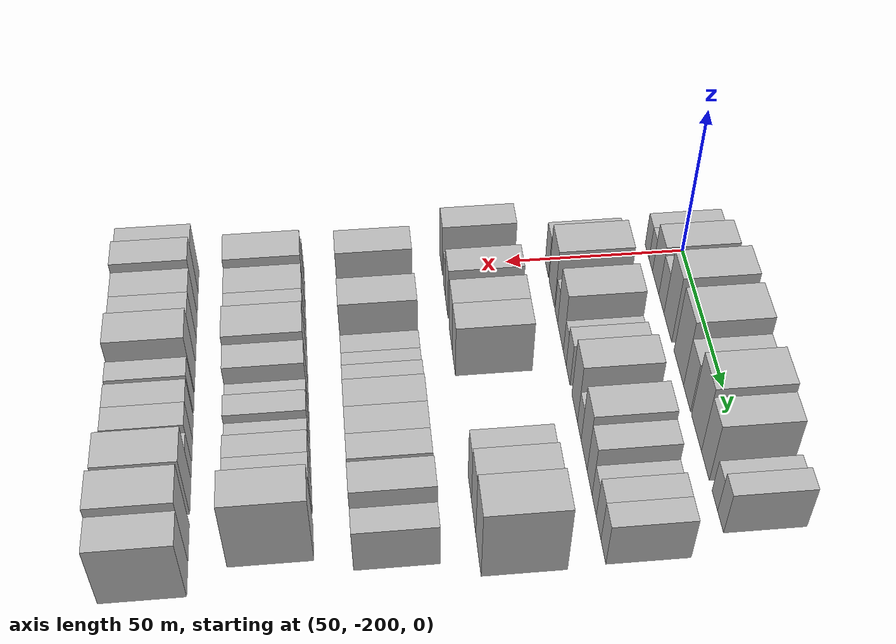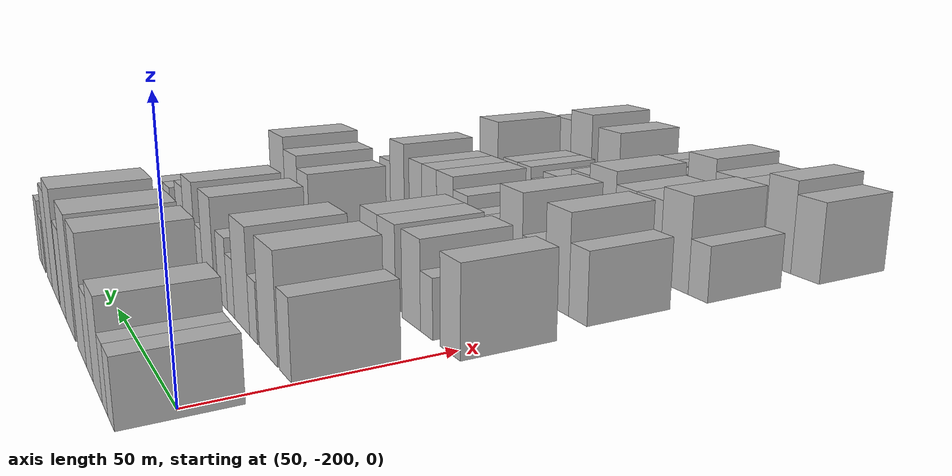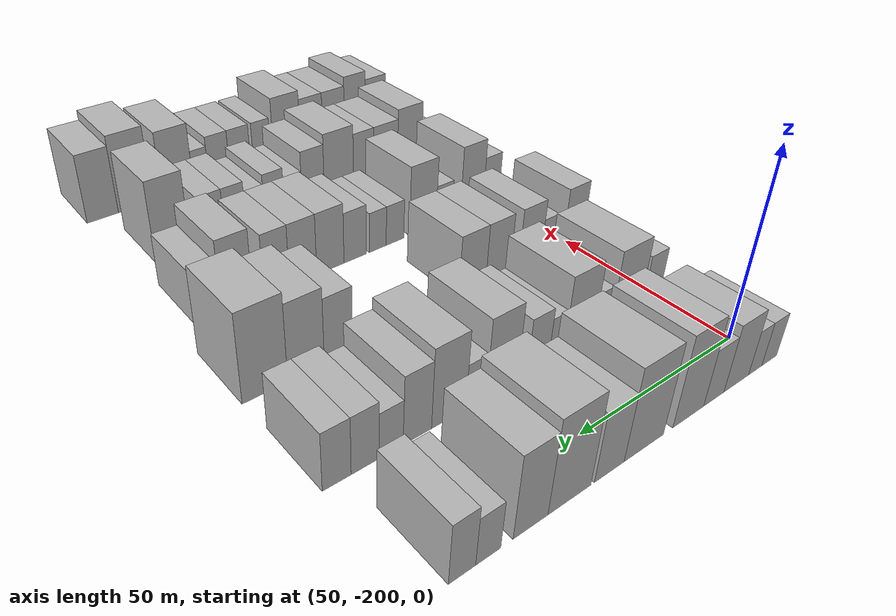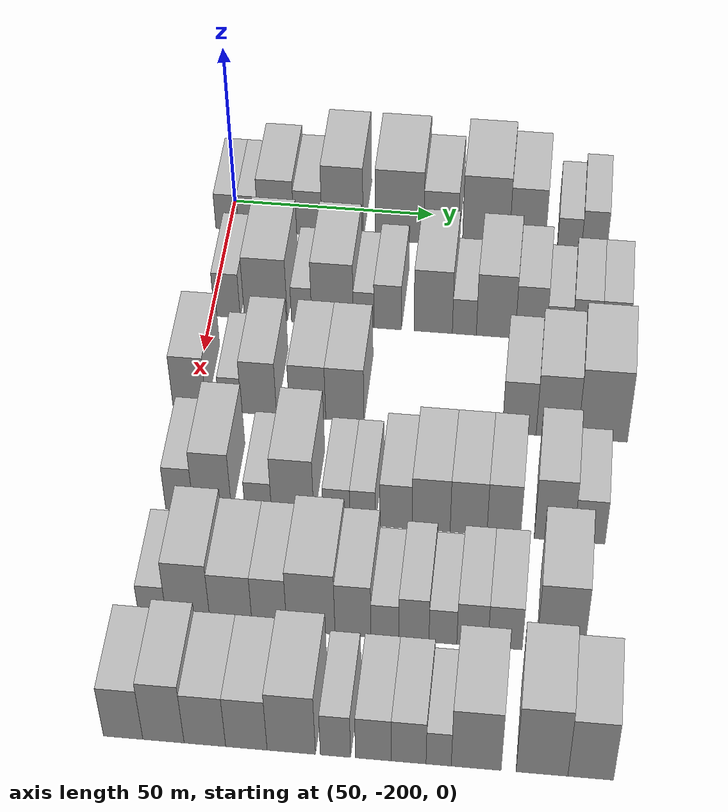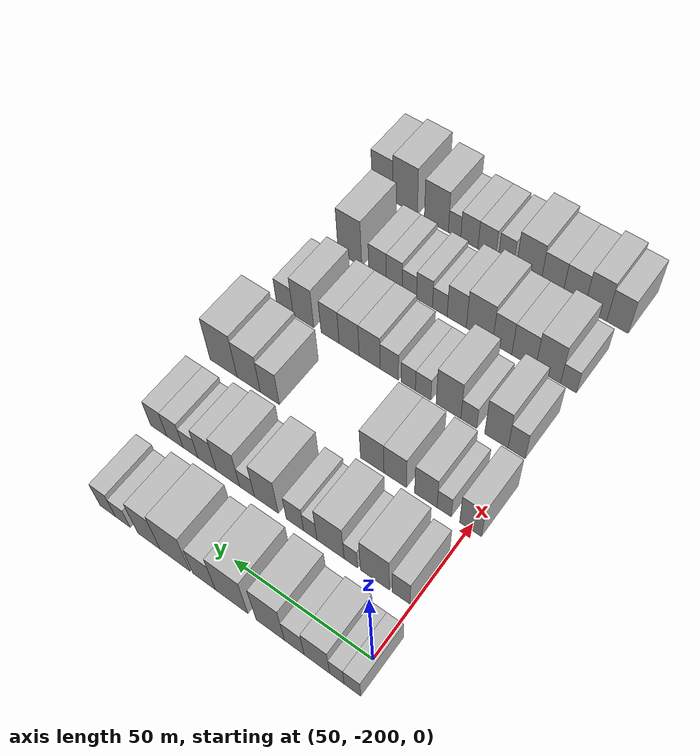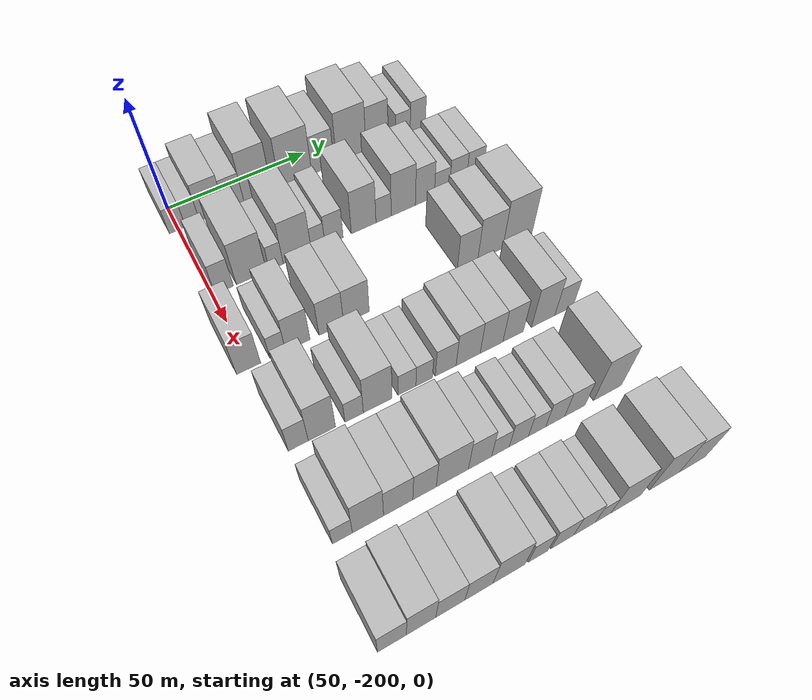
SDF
<sdf version="1.6">
 <world name="default">
  <model name="building_39">
   <static>1</static>
   <pose>50.0000 -200.4385 0 0.000000 0.000000 0.000000</pose>
   <link name="link">
    <pose>0 0 6.00 0 0 0</pose>
    <collision name="collision"><geometry><box><size>20.0000 5.6861 12.0000</size></box></geometry></collision>
    <visual name="visual">
     <cast_shadows>0</cast_shadows>
     <geometry><box><size>20.0000 5.6861 12.0000</size></box></geometry>
     <material>
      <script>
       <uri>model://HANNAS_wall/materials/scripts</uri>
       <uri>model://HANNAS_wall/materials/textures</uri>
       <name>vrc/HANNAS_wall</name>
      </script>
     </material>
    </visual>
   </link>
  </model>
  <model name="building_40">
   <static>1</static>
   <pose>50.0000 -195.1196 0 0.000000 0.000000 0.000000</pose>
   <link name="link">
    <pose>0 0 6.00 0 0 0</pose>
    <collision name="collision"><geometry><box><size>20.0000 4.9517 12.0000</size></box></geometry></collision>
    <visual name="visual">
     <cast_shadows>0</cast_shadows>
     <geometry><box><size>20.0000 4.9517 12.0000</size></box></geometry>
     <material>
      <script>
       <uri>model://HANNAS_wall/materials/scripts</uri>
       <uri>model://HANNAS_wall/materials/textures</uri>
       <name>vrc/HANNAS_wall</name>
      </script>
     </material>
    </visual>
   </link>
  </model>
  <model name="building_41">
   <static>1</static>
   <pose>50.0000 -188.1827 0 0.000000 0.000000 0.000000</pose>
   <link name="link">
    <pose>0 0 9.00 0 0 0</pose>
    <collision name="collision"><geometry><box><size>20.0000 8.9222 18.0000</size></box></geometry></collision>
    <visual name="visual">
     <cast_shadows>0</cast_shadows>
     <geometry><box><size>20.0000 8.9222 18.0000</size></box></geometry>
     <material>
      <script>
       <uri>model://HANNAS_wall/materials/scripts</uri>
       <uri>model://HANNAS_wall/materials/textures</uri>
       <name>vrc/HANNAS_wall</name>
      </script>
     </material>
    </visual>
   </link>
  </model>
  <model name="building_42">
   <static>1</static>
   <pose>50.0000 -180.2216 0 0.000000 0.000000 0.000000</pose>
   <link name="link">
    <pose>0 0 7.50 0 0 0</pose>
    <collision name="collision"><geometry><box><size>20.0000 7.0001 15.0000</size></box></geometry></collision>
    <visual name="visual">
     <cast_shadows>0</cast_shadows>
     <geometry><box><size>20.0000 7.0001 15.0000</size></box></geometry>
     <material>
      <script>
       <uri>model://HANNAS_wall/materials/scripts</uri>
       <uri>model://HANNAS_wall/materials/textures</uri>
       <name>vrc/HANNAS_wall</name>
      </script>
     </material>
    </visual>
   </link>
  </model>
  <model name="building_43">
   <static>1</static>
   <pose>50.0000 -171.6145 0 0.000000 0.000000 0.000000</pose>
   <link name="link">
    <pose>0 0 12.00 0 0 0</pose>
    <collision name="collision"><geometry><box><size>20.0000 10.2140 24.0000</size></box></geometry></collision>
    <visual name="visual">
     <cast_shadows>0</cast_shadows>
     <geometry><box><size>20.0000 10.2140 24.0000</size></box></geometry>
     <material>
      <script>
       <uri>model://HANNAS_wall/materials/scripts</uri>
       <uri>model://HANNAS_wall/materials/textures</uri>
       <name>vrc/HANNAS_wall</name>
      </script>
     </material>
    </visual>
   </link>
  </model>
  <model name="building_44">
   <static>1</static>
   <pose>50.0000 -157.5136 0 0.000000 0.000000 0.000000</pose>
   <link name="link">
    <pose>0 0 12.00 0 0 0</pose>
    <collision name="collision"><geometry><box><size>20.0000 11.9879 24.0000</size></box></geometry></collision>
    <visual name="visual">
     <cast_shadows>0</cast_shadows>
     <geometry><box><size>20.0000 11.9879 24.0000</size></box></geometry>
     <material>
      <script>
       <uri>model://HANNAS_wall/materials/scripts</uri>
       <uri>model://HANNAS_wall/materials/textures</uri>
       <name>vrc/HANNAS_wall</name>
      </script>
     </material>
    </visual>
   </link>
  </model>
  <model name="building_45">
   <static>1</static>
   <pose>50.0000 -147.2561 0 0.000000 0.000000 0.000000</pose>
   <link name="link">
    <pose>0 0 9.00 0 0 0</pose>
    <collision name="collision"><geometry><box><size>20.0000 8.5272 18.0000</size></box></geometry></collision>
    <visual name="visual">
     <cast_shadows>0</cast_shadows>
     <geometry><box><size>20.0000 8.5272 18.0000</size></box></geometry>
     <material>
      <script>
       <uri>model://HANNAS_wall/materials/scripts</uri>
       <uri>model://HANNAS_wall/materials/textures</uri>
       <name>vrc/HANNAS_wall</name>
      </script>
     </material>
    </visual>
   </link>
  </model>
  <model name="building_46">
   <static>1</static>
   <pose>50.0000 -136.2313 0 0.000000 0.000000 0.000000</pose>
   <link name="link">
    <pose>0 0 12.00 0 0 0</pose>
    <collision name="collision"><geometry><box><size>20.0000 11.5224 24.0000</size></box></geometry></collision>
    <visual name="visual">
     <cast_shadows>0</cast_shadows>
     <geometry><box><size>20.0000 11.5224 24.0000</size></box></geometry>
     <material>
      <script>
       <uri>model://HANNAS_wall/materials/scripts</uri>
       <uri>model://HANNAS_wall/materials/textures</uri>
       <name>vrc/HANNAS_wall</name>
      </script>
     </material>
    </visual>
   </link>
  </model>
  <model name="building_47">
   <static>1</static>
   <pose>50.0000 -126.0759 0 0.000000 0.000000 0.000000</pose>
   <link name="link">
    <pose>0 0 10.50 0 0 0</pose>
    <collision name="collision"><geometry><box><size>20.0000 8.7885 21.0000</size></box></geometry></collision>
    <visual name="visual">
     <cast_shadows>0</cast_shadows>
     <geometry><box><size>20.0000 8.7885 21.0000</size></box></geometry>
     <material>
      <script>
       <uri>model://HANNAS_wall/materials/scripts</uri>
       <uri>model://HANNAS_wall/materials/textures</uri>
       <name>vrc/HANNAS_wall</name>
      </script>
     </material>
    </visual>
   </link>
  </model>
  <model name="building_48">
   <static>1</static>
   <pose>50.0000 -115.7312 0 0.000000 0.000000 0.000000</pose>
   <link name="link">
    <pose>0 0 6.00 0 0 0</pose>
    <collision name="collision"><geometry><box><size>20.0000 5.9009 12.0000</size></box></geometry></collision>
    <visual name="visual">
     <cast_shadows>0</cast_shadows>
     <geometry><box><size>20.0000 5.9009 12.0000</size></box></geometry>
     <material>
      <script>
       <uri>model://HANNAS_wall/materials/scripts</uri>
       <uri>model://HANNAS_wall/materials/textures</uri>
       <name>vrc/HANNAS_wall</name>
      </script>
     </material>
    </visual>
   </link>
  </model>
  <model name="building_49">
   <static>1</static>
   <pose>50.0000 -109.6827 0 0.000000 0.000000 0.000000</pose>
   <link name="link">
    <pose>0 0 7.50 0 0 0</pose>
    <collision name="collision"><geometry><box><size>20.0000 6.1962 15.0000</size></box></geometry></collision>
    <visual name="visual">
     <cast_shadows>0</cast_shadows>
     <geometry><box><size>20.0000 6.1962 15.0000</size></box></geometry>
     <material>
      <script>
       <uri>model://HANNAS_wall/materials/scripts</uri>
       <uri>model://HANNAS_wall/materials/textures</uri>
       <name>vrc/HANNAS_wall</name>
      </script>
     </material>
    </visual>
   </link>
  </model>
  <model name="building_156">
   <static>1</static>
   <pose>79.0000 -196.0787 0 0.000000 0.000000 0.000000</pose>
   <link name="link">
    <pose>0 0 7.50 0 0 0</pose>
    <collision name="collision"><geometry><box><size>20.0000 6.2266 15.0000</size></box></geometry></collision>
    <visual name="visual">
     <cast_shadows>0</cast_shadows>
     <geometry><box><size>20.0000 6.2266 15.0000</size></box></geometry>
     <material>
      <script>
       <uri>model://HANNAS_wall/materials/scripts</uri>
       <uri>model://HANNAS_wall/materials/textures</uri>
       <name>vrc/HANNAS_wall</name>
      </script>
     </material>
    </visual>
   </link>
  </model>
  <model name="building_157">
   <static>1</static>
   <pose>79.0000 -186.7934 0 0.000000 0.000000 0.000000</pose>
   <link name="link">
    <pose>0 0 10.50 0 0 0</pose>
    <collision name="collision"><geometry><box><size>20.0000 10.3439 21.0000</size></box></geometry></collision>
    <visual name="visual">
     <cast_shadows>0</cast_shadows>
     <geometry><box><size>20.0000 10.3439 21.0000</size></box></geometry>
     <material>
      <script>
       <uri>model://HANNAS_wall/materials/scripts</uri>
       <uri>model://HANNAS_wall/materials/textures</uri>
       <name>vrc/HANNAS_wall</name>
      </script>
     </material>
    </visual>
   </link>
  </model>
  <model name="building_158">
   <static>1</static>
   <pose>79.0000 -178.1878 0 0.000000 0.000000 0.000000</pose>
   <link name="link">
    <pose>0 0 6.00 0 0 0</pose>
    <collision name="collision"><geometry><box><size>20.0000 4.8673 12.0000</size></box></geometry></collision>
    <visual name="visual">
     <cast_shadows>0</cast_shadows>
     <geometry><box><size>20.0000 4.8673 12.0000</size></box></geometry>
     <material>
      <script>
       <uri>model://HANNAS_wall/materials/scripts</uri>
       <uri>model://HANNAS_wall/materials/textures</uri>
       <name>vrc/HANNAS_wall</name>
      </script>
     </material>
    </visual>
   </link>
  </model>
  <model name="building_159">
   <static>1</static>
   <pose>79.0000 -170.7683 0 0.000000 0.000000 0.000000</pose>
   <link name="link">
    <pose>0 0 10.50 0 0 0</pose>
    <collision name="collision"><geometry><box><size>20.0000 9.9718 21.0000</size></box></geometry></collision>
    <visual name="visual">
     <cast_shadows>0</cast_shadows>
     <geometry><box><size>20.0000 9.9718 21.0000</size></box></geometry>
     <material>
      <script>
       <uri>model://HANNAS_wall/materials/scripts</uri>
       <uri>model://HANNAS_wall/materials/textures</uri>
       <name>vrc/HANNAS_wall</name>
      </script>
     </material>
    </visual>
   </link>
  </model>
  <model name="building_160">
   <static>1</static>
   <pose>79.0000 -163.3322 0 0.000000 0.000000 0.000000</pose>
   <link name="link">
    <pose>0 0 6.00 0 0 0</pose>
    <collision name="collision"><geometry><box><size>20.0000 4.9003 12.0000</size></box></geometry></collision>
    <visual name="visual">
     <cast_shadows>0</cast_shadows>
     <geometry><box><size>20.0000 4.9003 12.0000</size></box></geometry>
     <material>
      <script>
       <uri>model://HANNAS_wall/materials/scripts</uri>
       <uri>model://HANNAS_wall/materials/textures</uri>
       <name>vrc/HANNAS_wall</name>
      </script>
     </material>
    </visual>
   </link>
  </model>
  <model name="building_161">
   <static>1</static>
   <pose>79.0000 -157.5991 0 0.000000 0.000000 0.000000</pose>
   <link name="link">
    <pose>0 0 7.50 0 0 0</pose>
    <collision name="collision"><geometry><box><size>20.0000 6.5660 15.0000</size></box></geometry></collision>
    <visual name="visual">
     <cast_shadows>0</cast_shadows>
     <geometry><box><size>20.0000 6.5660 15.0000</size></box></geometry>
     <material>
      <script>
       <uri>model://HANNAS_wall/materials/scripts</uri>
       <uri>model://HANNAS_wall/materials/textures</uri>
       <name>vrc/HANNAS_wall</name>
      </script>
     </material>
    </visual>
   </link>
  </model>
  <model name="building_162">
   <static>1</static>
   <pose>79.0000 -146.7501 0 0.000000 0.000000 0.000000</pose>
   <link name="link">
    <pose>0 0 10.50 0 0 0</pose>
    <collision name="collision"><geometry><box><size>20.0000 9.1320 21.0000</size></box></geometry></collision>
    <visual name="visual">
     <cast_shadows>0</cast_shadows>
     <geometry><box><size>20.0000 9.1320 21.0000</size></box></geometry>
     <material>
      <script>
       <uri>model://HANNAS_wall/materials/scripts</uri>
       <uri>model://HANNAS_wall/materials/textures</uri>
       <name>vrc/HANNAS_wall</name>
      </script>
     </material>
    </visual>
   </link>
  </model>
  <model name="building_163">
   <static>1</static>
   <pose>79.0000 -139.3317 0 0.000000 0.000000 0.000000</pose>
   <link name="link">
    <pose>0 0 6.00 0 0 0</pose>
    <collision name="collision"><geometry><box><size>20.0000 5.7049 12.0000</size></box></geometry></collision>
    <visual name="visual">
     <cast_shadows>0</cast_shadows>
     <geometry><box><size>20.0000 5.7049 12.0000</size></box></geometry>
     <material>
      <script>
       <uri>model://HANNAS_wall/materials/scripts</uri>
       <uri>model://HANNAS_wall/materials/textures</uri>
       <name>vrc/HANNAS_wall</name>
      </script>
     </material>
    </visual>
   </link>
  </model>
  <model name="building_164">
   <static>1</static>
   <pose>79.0000 -131.8574 0 0.000000 0.000000 0.000000</pose>
   <link name="link">
    <pose>0 0 10.50 0 0 0</pose>
    <collision name="collision"><geometry><box><size>20.0000 9.2436 21.0000</size></box></geometry></collision>
    <visual name="visual">
     <cast_shadows>0</cast_shadows>
     <geometry><box><size>20.0000 9.2436 21.0000</size></box></geometry>
     <material>
      <script>
       <uri>model://HANNAS_wall/materials/scripts</uri>
       <uri>model://HANNAS_wall/materials/textures</uri>
       <name>vrc/HANNAS_wall</name>
      </script>
     </material>
    </visual>
   </link>
  </model>
  <model name="building_165">
   <static>1</static>
   <pose>79.0000 -123.5804 0 0.000000 0.000000 0.000000</pose>
   <link name="link">
    <pose>0 0 9.00 0 0 0</pose>
    <collision name="collision"><geometry><box><size>20.0000 7.3105 18.0000</size></box></geometry></collision>
    <visual name="visual">
     <cast_shadows>0</cast_shadows>
     <geometry><box><size>20.0000 7.3105 18.0000</size></box></geometry>
     <material>
      <script>
       <uri>model://HANNAS_wall/materials/scripts</uri>
       <uri>model://HANNAS_wall/materials/textures</uri>
       <name>vrc/HANNAS_wall</name>
      </script>
     </material>
    </visual>
   </link>
  </model>
  <model name="building_166">
   <static>1</static>
   <pose>79.0000 -116.9290 0 0.000000 0.000000 0.000000</pose>
   <link name="link">
    <pose>0 0 6.00 0 0 0</pose>
    <collision name="collision"><geometry><box><size>20.0000 5.9922 12.0000</size></box></geometry></collision>
    <visual name="visual">
     <cast_shadows>0</cast_shadows>
     <geometry><box><size>20.0000 5.9922 12.0000</size></box></geometry>
     <material>
      <script>
       <uri>model://HANNAS_wall/materials/scripts</uri>
       <uri>model://HANNAS_wall/materials/textures</uri>
       <name>vrc/HANNAS_wall</name>
      </script>
     </material>
    </visual>
   </link>
  </model>
  <model name="building_167">
   <static>1</static>
   <pose>79.0000 -110.6026 0 0.000000 0.000000 0.000000</pose>
   <link name="link">
    <pose>0 0 7.50 0 0 0</pose>
    <collision name="collision"><geometry><box><size>20.0000 6.6606 15.0000</size></box></geometry></collision>
    <visual name="visual">
     <cast_shadows>0</cast_shadows>
     <geometry><box><size>20.0000 6.6606 15.0000</size></box></geometry>
     <material>
      <script>
       <uri>model://HANNAS_wall/materials/scripts</uri>
       <uri>model://HANNAS_wall/materials/textures</uri>
       <name>vrc/HANNAS_wall</name>
      </script>
     </material>
    </visual>
   </link>
  </model>
  <model name="building_168">
   <static>1</static>
   <pose>79.0000 -103.9486 0 0.000000 0.000000 0.000000</pose>
   <link name="link">
    <pose>0 0 7.50 0 0 0</pose>
    <collision name="collision"><geometry><box><size>20.0000 6.6475 15.0000</size></box></geometry></collision>
    <visual name="visual">
     <cast_shadows>0</cast_shadows>
     <geometry><box><size>20.0000 6.6475 15.0000</size></box></geometry>
     <material>
      <script>
       <uri>model://HANNAS_wall/materials/scripts</uri>
       <uri>model://HANNAS_wall/materials/textures</uri>
       <name>vrc/HANNAS_wall</name>
      </script>
     </material>
    </visual>
   </link>
  </model>
  <model name="building_270">
   <static>1</static>
   <pose>108.0000 -200.4807 0 0.000000 0.000000 0.000000</pose>
   <link name="link">
    <pose>0 0 9.00 0 0 0</pose>
    <collision name="collision"><geometry><box><size>20.0000 7.7649 18.0000</size></box></geometry></collision>
    <visual name="visual">
     <cast_shadows>0</cast_shadows>
     <geometry><box><size>20.0000 7.7649 18.0000</size></box></geometry>
     <material>
      <script>
       <uri>model://HANNAS_wall/materials/scripts</uri>
       <uri>model://HANNAS_wall/materials/textures</uri>
       <name>vrc/HANNAS_wall</name>
      </script>
     </material>
    </visual>
   </link>
  </model>
  <model name="building_271">
   <static>1</static>
   <pose>108.0000 -191.0362 0 0.000000 0.000000 0.000000</pose>
   <link name="link">
    <pose>0 0 6.00 0 0 0</pose>
    <collision name="collision"><geometry><box><size>20.0000 5.1241 12.0000</size></box></geometry></collision>
    <visual name="visual">
     <cast_shadows>0</cast_shadows>
     <geometry><box><size>20.0000 5.1241 12.0000</size></box></geometry>
     <material>
      <script>
       <uri>model://HANNAS_wall/materials/scripts</uri>
       <uri>model://HANNAS_wall/materials/textures</uri>
       <name>vrc/HANNAS_wall</name>
      </script>
     </material>
    </visual>
   </link>
  </model>
  <model name="building_272">
   <static>1</static>
   <pose>108.0000 -184.4050 0 0.000000 0.000000 0.000000</pose>
   <link name="link">
    <pose>0 0 9.00 0 0 0</pose>
    <collision name="collision"><geometry><box><size>20.0000 8.1384 18.0000</size></box></geometry></collision>
    <visual name="visual">
     <cast_shadows>0</cast_shadows>
     <geometry><box><size>20.0000 8.1384 18.0000</size></box></geometry>
     <material>
      <script>
       <uri>model://HANNAS_wall/materials/scripts</uri>
       <uri>model://HANNAS_wall/materials/textures</uri>
       <name>vrc/HANNAS_wall</name>
      </script>
     </material>
    </visual>
   </link>
  </model>
  <model name="building_273">
   <static>1</static>
   <pose>108.0000 -173.1613 0 0.000000 0.000000 0.000000</pose>
   <link name="link">
    <pose>0 0 9.00 0 0 0</pose>
    <collision name="collision"><geometry><box><size>20.0000 8.3489 18.0000</size></box></geometry></collision>
    <visual name="visual">
     <cast_shadows>0</cast_shadows>
     <geometry><box><size>20.0000 8.3489 18.0000</size></box></geometry>
     <material>
      <script>
       <uri>model://HANNAS_wall/materials/scripts</uri>
       <uri>model://HANNAS_wall/materials/textures</uri>
       <name>vrc/HANNAS_wall</name>
      </script>
     </material>
    </visual>
   </link>
  </model>
  <model name="building_274">
   <static>1</static>
   <pose>108.0000 -164.5776 0 0.000000 0.000000 0.000000</pose>
   <link name="link">
    <pose>0 0 9.00 0 0 0</pose>
    <collision name="collision"><geometry><box><size>20.0000 8.8185 18.0000</size></box></geometry></collision>
    <visual name="visual">
     <cast_shadows>0</cast_shadows>
     <geometry><box><size>20.0000 8.8185 18.0000</size></box></geometry>
     <material>
      <script>
       <uri>model://HANNAS_wall/materials/scripts</uri>
       <uri>model://HANNAS_wall/materials/textures</uri>
       <name>vrc/HANNAS_wall</name>
      </script>
     </material>
    </visual>
   </link>
  </model>
  <model name="building_275">
   <static>1</static>
   <pose>108.0000 -124.6228 0 0.000000 0.000000 0.000000</pose>
   <link name="link">
    <pose>0 0 9.00 0 0 0</pose>
    <collision name="collision"><geometry><box><size>20.0000 7.6971 18.0000</size></box></geometry></collision>
    <visual name="visual">
     <cast_shadows>0</cast_shadows>
     <geometry><box><size>20.0000 7.6971 18.0000</size></box></geometry>
     <material>
      <script>
       <uri>model://HANNAS_wall/materials/scripts</uri>
       <uri>model://HANNAS_wall/materials/textures</uri>
       <name>vrc/HANNAS_wall</name>
      </script>
     </material>
    </visual>
   </link>
  </model>
  <model name="building_276">
   <static>1</static>
   <pose>108.0000 -116.0191 0 0.000000 0.000000 0.000000</pose>
   <link name="link">
    <pose>0 0 10.50 0 0 0</pose>
    <collision name="collision"><geometry><box><size>20.0000 9.5101 21.0000</size></box></geometry></collision>
    <visual name="visual">
     <cast_shadows>0</cast_shadows>
     <geometry><box><size>20.0000 9.5101 21.0000</size></box></geometry>
     <material>
      <script>
       <uri>model://HANNAS_wall/materials/scripts</uri>
       <uri>model://HANNAS_wall/materials/textures</uri>
       <name>vrc/HANNAS_wall</name>
      </script>
     </material>
    </visual>
   </link>
  </model>
  <model name="building_277">
   <static>1</static>
   <pose>108.0000 -105.6453 0 0.000000 0.000000 0.000000</pose>
   <link name="link">
    <pose>0 0 12.00 0 0 0</pose>
    <collision name="collision"><geometry><box><size>20.0000 11.2376 24.0000</size></box></geometry></collision>
    <visual name="visual">
     <cast_shadows>0</cast_shadows>
     <geometry><box><size>20.0000 11.2376 24.0000</size></box></geometry>
     <material>
      <script>
       <uri>model://HANNAS_wall/materials/scripts</uri>
       <uri>model://HANNAS_wall/materials/textures</uri>
       <name>vrc/HANNAS_wall</name>
      </script>
     </material>
    </visual>
   </link>
  </model>
  <model name="building_378">
   <static>1</static>
   <pose>137.0000 -198.0681 0 0.000000 0.000000 0.000000</pose>
   <link name="link">
    <pose>0 0 7.50 0 0 0</pose>
    <collision name="collision"><geometry><box><size>20.0000 6.2134 15.0000</size></box></geometry></collision>
    <visual name="visual">
     <cast_shadows>0</cast_shadows>
     <geometry><box><size>20.0000 6.2134 15.0000</size></box></geometry>
     <material>
      <script>
       <uri>model://HANNAS_wall/materials/scripts</uri>
       <uri>model://HANNAS_wall/materials/textures</uri>
       <name>vrc/HANNAS_wall</name>
      </script>
     </material>
    </visual>
   </link>
  </model>
  <model name="building_379">
   <static>1</static>
   <pose>137.0000 -190.6801 0 0.000000 0.000000 0.000000</pose>
   <link name="link">
    <pose>0 0 10.50 0 0 0</pose>
    <collision name="collision"><geometry><box><size>20.0000 8.5626 21.0000</size></box></geometry></collision>
    <visual name="visual">
     <cast_shadows>0</cast_shadows>
     <geometry><box><size>20.0000 8.5626 21.0000</size></box></geometry>
     <material>
      <script>
       <uri>model://HANNAS_wall/materials/scripts</uri>
       <uri>model://HANNAS_wall/materials/textures</uri>
       <name>vrc/HANNAS_wall</name>
      </script>
     </material>
    </visual>
   </link>
  </model>
  <model name="building_380">
   <static>1</static>
   <pose>137.0000 -180.4495 0 0.000000 0.000000 0.000000</pose>
   <link name="link">
    <pose>0 0 6.00 0 0 0</pose>
    <collision name="collision"><geometry><box><size>20.0000 5.8986 12.0000</size></box></geometry></collision>
    <visual name="visual">
     <cast_shadows>0</cast_shadows>
     <geometry><box><size>20.0000 5.8986 12.0000</size></box></geometry>
     <material>
      <script>
       <uri>model://HANNAS_wall/materials/scripts</uri>
       <uri>model://HANNAS_wall/materials/textures</uri>
       <name>vrc/HANNAS_wall</name>
      </script>
     </material>
    </visual>
   </link>
  </model>
  <model name="building_381">
   <static>1</static>
   <pose>137.0000 -172.8266 0 0.000000 0.000000 0.000000</pose>
   <link name="link">
    <pose>0 0 10.50 0 0 0</pose>
    <collision name="collision"><geometry><box><size>20.0000 9.3471 21.0000</size></box></geometry></collision>
    <visual name="visual">
     <cast_shadows>0</cast_shadows>
     <geometry><box><size>20.0000 9.3471 21.0000</size></box></geometry>
     <material>
      <script>
       <uri>model://HANNAS_wall/materials/scripts</uri>
       <uri>model://HANNAS_wall/materials/textures</uri>
       <name>vrc/HANNAS_wall</name>
      </script>
     </material>
    </visual>
   </link>
  </model>
  <model name="building_382">
   <static>1</static>
   <pose>137.0000 -163.1723 0 0.000000 0.000000 0.000000</pose>
   <link name="link">
    <pose>0 0 6.00 0 0 0</pose>
    <collision name="collision"><geometry><box><size>20.0000 5.9615 12.0000</size></box></geometry></collision>
    <visual name="visual">
     <cast_shadows>0</cast_shadows>
     <geometry><box><size>20.0000 5.9615 12.0000</size></box></geometry>
     <material>
      <script>
       <uri>model://HANNAS_wall/materials/scripts</uri>
       <uri>model://HANNAS_wall/materials/textures</uri>
       <name>vrc/HANNAS_wall</name>
      </script>
     </material>
    </visual>
   </link>
  </model>
  <model name="building_383">
   <static>1</static>
   <pose>137.0000 -157.4062 0 0.000000 0.000000 0.000000</pose>
   <link name="link">
    <pose>0 0 6.00 0 0 0</pose>
    <collision name="collision"><geometry><box><size>20.0000 5.5708 12.0000</size></box></geometry></collision>
    <visual name="visual">
     <cast_shadows>0</cast_shadows>
     <geometry><box><size>20.0000 5.5708 12.0000</size></box></geometry>
     <material>
      <script>
       <uri>model://HANNAS_wall/materials/scripts</uri>
       <uri>model://HANNAS_wall/materials/textures</uri>
       <name>vrc/HANNAS_wall</name>
      </script>
     </material>
    </visual>
   </link>
  </model>
  <model name="building_384">
   <static>1</static>
   <pose>137.0000 -150.0614 0 0.000000 0.000000 0.000000</pose>
   <link name="link">
    <pose>0 0 7.50 0 0 0</pose>
    <collision name="collision"><geometry><box><size>20.0000 7.1188 15.0000</size></box></geometry></collision>
    <visual name="visual">
     <cast_shadows>0</cast_shadows>
     <geometry><box><size>20.0000 7.1188 15.0000</size></box></geometry>
     <material>
      <script>
       <uri>model://HANNAS_wall/materials/scripts</uri>
       <uri>model://HANNAS_wall/materials/textures</uri>
       <name>vrc/HANNAS_wall</name>
      </script>
     </material>
    </visual>
   </link>
  </model>
  <model name="building_385">
   <static>1</static>
   <pose>137.0000 -142.3013 0 0.000000 0.000000 0.000000</pose>
   <link name="link">
    <pose>0 0 9.00 0 0 0</pose>
    <collision name="collision"><geometry><box><size>20.0000 8.4014 18.0000</size></box></geometry></collision>
    <visual name="visual">
     <cast_shadows>0</cast_shadows>
     <geometry><box><size>20.0000 8.4014 18.0000</size></box></geometry>
     <material>
      <script>
       <uri>model://HANNAS_wall/materials/scripts</uri>
       <uri>model://HANNAS_wall/materials/textures</uri>
       <name>vrc/HANNAS_wall</name>
      </script>
     </material>
    </visual>
   </link>
  </model>
  <model name="building_386">
   <static>1</static>
   <pose>137.0000 -134.0593 0 0.000000 0.000000 0.000000</pose>
   <link name="link">
    <pose>0 0 9.00 0 0 0</pose>
    <collision name="collision"><geometry><box><size>20.0000 8.0825 18.0000</size></box></geometry></collision>
    <visual name="visual">
     <cast_shadows>0</cast_shadows>
     <geometry><box><size>20.0000 8.0825 18.0000</size></box></geometry>
     <material>
      <script>
       <uri>model://HANNAS_wall/materials/scripts</uri>
       <uri>model://HANNAS_wall/materials/textures</uri>
       <name>vrc/HANNAS_wall</name>
      </script>
     </material>
    </visual>
   </link>
  </model>
  <model name="building_387">
   <static>1</static>
   <pose>137.0000 -126.3455 0 0.000000 0.000000 0.000000</pose>
   <link name="link">
    <pose>0 0 9.00 0 0 0</pose>
    <collision name="collision"><geometry><box><size>20.0000 7.3451 18.0000</size></box></geometry></collision>
    <visual name="visual">
     <cast_shadows>0</cast_shadows>
     <geometry><box><size>20.0000 7.3451 18.0000</size></box></geometry>
     <material>
      <script>
       <uri>model://HANNAS_wall/materials/scripts</uri>
       <uri>model://HANNAS_wall/materials/textures</uri>
       <name>vrc/HANNAS_wall</name>
      </script>
     </material>
    </visual>
   </link>
  </model>
  <model name="building_388">
   <static>1</static>
   <pose>137.0000 -115.3692 0 0.000000 0.000000 0.000000</pose>
   <link name="link">
    <pose>0 0 10.50 0 0 0</pose>
    <collision name="collision"><geometry><box><size>20.0000 8.6076 21.0000</size></box></geometry></collision>
    <visual name="visual">
     <cast_shadows>0</cast_shadows>
     <geometry><box><size>20.0000 8.6076 21.0000</size></box></geometry>
     <material>
      <script>
       <uri>model://HANNAS_wall/materials/scripts</uri>
       <uri>model://HANNAS_wall/materials/textures</uri>
       <name>vrc/HANNAS_wall</name>
      </script>
     </material>
    </visual>
   </link>
  </model>
  <model name="building_389">
   <static>1</static>
   <pose>137.0000 -107.6416 0 0.000000 0.000000 0.000000</pose>
   <link name="link">
    <pose>0 0 7.50 0 0 0</pose>
    <collision name="collision"><geometry><box><size>20.0000 6.8477 15.0000</size></box></geometry></collision>
    <visual name="visual">
     <cast_shadows>0</cast_shadows>
     <geometry><box><size>20.0000 6.8477 15.0000</size></box></geometry>
     <material>
      <script>
       <uri>model://HANNAS_wall/materials/scripts</uri>
       <uri>model://HANNAS_wall/materials/textures</uri>
       <name>vrc/HANNAS_wall</name>
      </script>
     </material>
    </visual>
   </link>
  </model>
  <model name="building_489">
   <static>1</static>
   <pose>166.0000 -199.0329 0 0.000000 0.000000 0.000000</pose>
   <link name="link">
    <pose>0 0 6.00 0 0 0</pose>
    <collision name="collision"><geometry><box><size>20.0000 5.9131 12.0000</size></box></geometry></collision>
    <visual name="visual">
     <cast_shadows>0</cast_shadows>
     <geometry><box><size>20.0000 5.9131 12.0000</size></box></geometry>
     <material>
      <script>
       <uri>model://HANNAS_wall/materials/scripts</uri>
       <uri>model://HANNAS_wall/materials/textures</uri>
       <name>vrc/HANNAS_wall</name>
      </script>
     </material>
    </visual>
   </link>
  </model>
  <model name="building_490">
   <static>1</static>
   <pose>166.0000 -191.3974 0 0.000000 0.000000 0.000000</pose>
   <link name="link">
    <pose>0 0 10.50 0 0 0</pose>
    <collision name="collision"><geometry><box><size>20.0000 9.3579 21.0000</size></box></geometry></collision>
    <visual name="visual">
     <cast_shadows>0</cast_shadows>
     <geometry><box><size>20.0000 9.3579 21.0000</size></box></geometry>
     <material>
      <script>
       <uri>model://HANNAS_wall/materials/scripts</uri>
       <uri>model://HANNAS_wall/materials/textures</uri>
       <name>vrc/HANNAS_wall</name>
      </script>
     </material>
    </visual>
   </link>
  </model>
  <model name="building_491">
   <static>1</static>
   <pose>166.0000 -182.2271 0 0.000000 0.000000 0.000000</pose>
   <link name="link">
    <pose>0 0 9.00 0 0 0</pose>
    <collision name="collision"><geometry><box><size>20.0000 8.9826 18.0000</size></box></geometry></collision>
    <visual name="visual">
     <cast_shadows>0</cast_shadows>
     <geometry><box><size>20.0000 8.9826 18.0000</size></box></geometry>
     <material>
      <script>
       <uri>model://HANNAS_wall/materials/scripts</uri>
       <uri>model://HANNAS_wall/materials/textures</uri>
       <name>vrc/HANNAS_wall</name>
      </script>
     </material>
    </visual>
   </link>
  </model>
  <model name="building_492">
   <static>1</static>
   <pose>166.0000 -174.0609 0 0.000000 0.000000 0.000000</pose>
   <link name="link">
    <pose>0 0 9.00 0 0 0</pose>
    <collision name="collision"><geometry><box><size>20.0000 7.3499 18.0000</size></box></geometry></collision>
    <visual name="visual">
     <cast_shadows>0</cast_shadows>
     <geometry><box><size>20.0000 7.3499 18.0000</size></box></geometry>
     <material>
      <script>
       <uri>model://HANNAS_wall/materials/scripts</uri>
       <uri>model://HANNAS_wall/materials/textures</uri>
       <name>vrc/HANNAS_wall</name>
      </script>
     </material>
    </visual>
   </link>
  </model>
  <model name="building_493">
   <static>1</static>
   <pose>166.0000 -165.2666 0 0.000000 0.000000 0.000000</pose>
   <link name="link">
    <pose>0 0 10.50 0 0 0</pose>
    <collision name="collision"><geometry><box><size>20.0000 10.2387 21.0000</size></box></geometry></collision>
    <visual name="visual">
     <cast_shadows>0</cast_shadows>
     <geometry><box><size>20.0000 10.2387 21.0000</size></box></geometry>
     <material>
      <script>
       <uri>model://HANNAS_wall/materials/scripts</uri>
       <uri>model://HANNAS_wall/materials/textures</uri>
       <name>vrc/HANNAS_wall</name>
      </script>
     </material>
    </visual>
   </link>
  </model>
  <model name="building_494">
   <static>1</static>
   <pose>166.0000 -156.3468 0 0.000000 0.000000 0.000000</pose>
   <link name="link">
    <pose>0 0 9.00 0 0 0</pose>
    <collision name="collision"><geometry><box><size>20.0000 7.6009 18.0000</size></box></geometry></collision>
    <visual name="visual">
     <cast_shadows>0</cast_shadows>
     <geometry><box><size>20.0000 7.6009 18.0000</size></box></geometry>
     <material>
      <script>
       <uri>model://HANNAS_wall/materials/scripts</uri>
       <uri>model://HANNAS_wall/materials/textures</uri>
       <name>vrc/HANNAS_wall</name>
      </script>
     </material>
    </visual>
   </link>
  </model>
  <model name="building_495">
   <static>1</static>
   <pose>166.0000 -149.6176 0 0.000000 0.000000 0.000000</pose>
   <link name="link">
    <pose>0 0 6.00 0 0 0</pose>
    <collision name="collision"><geometry><box><size>20.0000 5.8576 12.0000</size></box></geometry></collision>
    <visual name="visual">
     <cast_shadows>0</cast_shadows>
     <geometry><box><size>20.0000 5.8576 12.0000</size></box></geometry>
     <material>
      <script>
       <uri>model://HANNAS_wall/materials/scripts</uri>
       <uri>model://HANNAS_wall/materials/textures</uri>
       <name>vrc/HANNAS_wall</name>
      </script>
     </material>
    </visual>
   </link>
  </model>
  <model name="building_496">
   <static>1</static>
   <pose>166.0000 -143.4827 0 0.000000 0.000000 0.000000</pose>
   <link name="link">
    <pose>0 0 7.50 0 0 0</pose>
    <collision name="collision"><geometry><box><size>20.0000 6.4121 15.0000</size></box></geometry></collision>
    <visual name="visual">
     <cast_shadows>0</cast_shadows>
     <geometry><box><size>20.0000 6.4121 15.0000</size></box></geometry>
     <material>
      <script>
       <uri>model://HANNAS_wall/materials/scripts</uri>
       <uri>model://HANNAS_wall/materials/textures</uri>
       <name>vrc/HANNAS_wall</name>
      </script>
     </material>
    </visual>
   </link>
  </model>
  <model name="building_497">
   <static>1</static>
   <pose>166.0000 -137.3428 0 0.000000 0.000000 0.000000</pose>
   <link name="link">
    <pose>0 0 6.00 0 0 0</pose>
    <collision name="collision"><geometry><box><size>20.0000 5.8678 12.0000</size></box></geometry></collision>
    <visual name="visual">
     <cast_shadows>0</cast_shadows>
     <geometry><box><size>20.0000 5.8678 12.0000</size></box></geometry>
     <material>
      <script>
       <uri>model://HANNAS_wall/materials/scripts</uri>
       <uri>model://HANNAS_wall/materials/textures</uri>
       <name>vrc/HANNAS_wall</name>
      </script>
     </material>
    </visual>
   </link>
  </model>
  <model name="building_498">
   <static>1</static>
   <pose>166.0000 -131.1297 0 0.000000 0.000000 0.000000</pose>
   <link name="link">
    <pose>0 0 7.50 0 0 0</pose>
    <collision name="collision"><geometry><box><size>20.0000 6.5583 15.0000</size></box></geometry></collision>
    <visual name="visual">
     <cast_shadows>0</cast_shadows>
     <geometry><box><size>20.0000 6.5583 15.0000</size></box></geometry>
     <material>
      <script>
       <uri>model://HANNAS_wall/materials/scripts</uri>
       <uri>model://HANNAS_wall/materials/textures</uri>
       <name>vrc/HANNAS_wall</name>
      </script>
     </material>
    </visual>
   </link>
  </model>
  <model name="building_499">
   <static>1</static>
   <pose>166.0000 -124.2545 0 0.000000 0.000000 0.000000</pose>
   <link name="link">
    <pose>0 0 7.50 0 0 0</pose>
    <collision name="collision"><geometry><box><size>20.0000 7.1922 15.0000</size></box></geometry></collision>
    <visual name="visual">
     <cast_shadows>0</cast_shadows>
     <geometry><box><size>20.0000 7.1922 15.0000</size></box></geometry>
     <material>
      <script>
       <uri>model://HANNAS_wall/materials/scripts</uri>
       <uri>model://HANNAS_wall/materials/textures</uri>
       <name>vrc/HANNAS_wall</name>
      </script>
     </material>
    </visual>
   </link>
  </model>
  <model name="building_500">
   <static>1</static>
   <pose>166.0000 -112.6779 0 0.000000 0.000000 0.000000</pose>
   <link name="link">
    <pose>0 0 12.00 0 0 0</pose>
    <collision name="collision"><geometry><box><size>20.0000 9.9608 24.0000</size></box></geometry></collision>
    <visual name="visual">
     <cast_shadows>0</cast_shadows>
     <geometry><box><size>20.0000 9.9608 24.0000</size></box></geometry>
     <material>
      <script>
       <uri>model://HANNAS_wall/materials/scripts</uri>
       <uri>model://HANNAS_wall/materials/textures</uri>
       <name>vrc/HANNAS_wall</name>
      </script>
     </material>
    </visual>
   </link>
  </model>
  <model name="building_607">
   <static>1</static>
   <pose>195.0000 -200.1333 0 0.000000 0.000000 0.000000</pose>
   <link name="link">
    <pose>0 0 9.00 0 0 0</pose>
    <collision name="collision"><geometry><box><size>20.0000 8.1000 18.0000</size></box></geometry></collision>
    <visual name="visual">
     <cast_shadows>0</cast_shadows>
     <geometry><box><size>20.0000 8.1000 18.0000</size></box></geometry>
     <material>
      <script>
       <uri>model://HANNAS_wall/materials/scripts</uri>
       <uri>model://HANNAS_wall/materials/textures</uri>
       <name>vrc/HANNAS_wall</name>
      </script>
     </material>
    </visual>
   </link>
  </model>
  <model name="building_608">
   <static>1</static>
   <pose>195.0000 -191.8483 0 0.000000 0.000000 0.000000</pose>
   <link name="link">
    <pose>0 0 10.50 0 0 0</pose>
    <collision name="collision"><geometry><box><size>20.0000 8.4700 21.0000</size></box></geometry></collision>
    <visual name="visual">
     <cast_shadows>0</cast_shadows>
     <geometry><box><size>20.0000 8.4700 21.0000</size></box></geometry>
     <material>
      <script>
       <uri>model://HANNAS_wall/materials/scripts</uri>
       <uri>model://HANNAS_wall/materials/textures</uri>
       <name>vrc/HANNAS_wall</name>
      </script>
     </material>
    </visual>
   </link>
  </model>
  <model name="building_609">
   <static>1</static>
   <pose>195.0000 -183.3591 0 0.000000 0.000000 0.000000</pose>
   <link name="link">
    <pose>0 0 9.00 0 0 0</pose>
    <collision name="collision"><geometry><box><size>20.0000 8.5084 18.0000</size></box></geometry></collision>
    <visual name="visual">
     <cast_shadows>0</cast_shadows>
     <geometry><box><size>20.0000 8.5084 18.0000</size></box></geometry>
     <material>
      <script>
       <uri>model://HANNAS_wall/materials/scripts</uri>
       <uri>model://HANNAS_wall/materials/textures</uri>
       <name>vrc/HANNAS_wall</name>
      </script>
     </material>
    </visual>
   </link>
  </model>
  <model name="building_610">
   <static>1</static>
   <pose>195.0000 -174.8674 0 0.000000 0.000000 0.000000</pose>
   <link name="link">
    <pose>0 0 9.00 0 0 0</pose>
    <collision name="collision"><geometry><box><size>20.0000 8.4751 18.0000</size></box></geometry></collision>
    <visual name="visual">
     <cast_shadows>0</cast_shadows>
     <geometry><box><size>20.0000 8.4751 18.0000</size></box></geometry>
     <material>
      <script>
       <uri>model://HANNAS_wall/materials/scripts</uri>
       <uri>model://HANNAS_wall/materials/textures</uri>
       <name>vrc/HANNAS_wall</name>
      </script>
     </material>
    </visual>
   </link>
  </model>
  <model name="building_611">
   <static>1</static>
   <pose>195.0000 -165.7053 0 0.000000 0.000000 0.000000</pose>
   <link name="link">
    <pose>0 0 10.50 0 0 0</pose>
    <collision name="collision"><geometry><box><size>20.0000 9.8491 21.0000</size></box></geometry></collision>
    <visual name="visual">
     <cast_shadows>0</cast_shadows>
     <geometry><box><size>20.0000 9.8491 21.0000</size></box></geometry>
     <material>
      <script>
       <uri>model://HANNAS_wall/materials/scripts</uri>
       <uri>model://HANNAS_wall/materials/textures</uri>
       <name>vrc/HANNAS_wall</name>
      </script>
     </material>
    </visual>
   </link>
  </model>
  <model name="building_612">
   <static>1</static>
   <pose>195.0000 -156.7147 0 0.000000 0.000000 0.000000</pose>
   <link name="link">
    <pose>0 0 7.50 0 0 0</pose>
    <collision name="collision"><geometry><box><size>20.0000 6.1323 15.0000</size></box></geometry></collision>
    <visual name="visual">
     <cast_shadows>0</cast_shadows>
     <geometry><box><size>20.0000 6.1323 15.0000</size></box></geometry>
     <material>
      <script>
       <uri>model://HANNAS_wall/materials/scripts</uri>
       <uri>model://HANNAS_wall/materials/textures</uri>
       <name>vrc/HANNAS_wall</name>
      </script>
     </material>
    </visual>
   </link>
  </model>
  <model name="building_613">
   <static>1</static>
   <pose>195.0000 -149.0502 0 0.000000 0.000000 0.000000</pose>
   <link name="link">
    <pose>0 0 7.50 0 0 0</pose>
    <collision name="collision"><geometry><box><size>20.0000 7.1966 15.0000</size></box></geometry></collision>
    <visual name="visual">
     <cast_shadows>0</cast_shadows>
     <geometry><box><size>20.0000 7.1966 15.0000</size></box></geometry>
     <material>
      <script>
       <uri>model://HANNAS_wall/materials/scripts</uri>
       <uri>model://HANNAS_wall/materials/textures</uri>
       <name>vrc/HANNAS_wall</name>
      </script>
     </material>
    </visual>
   </link>
  </model>
  <model name="building_614">
   <static>1</static>
   <pose>195.0000 -141.9094 0 0.000000 0.000000 0.000000</pose>
   <link name="link">
    <pose>0 0 7.50 0 0 0</pose>
    <collision name="collision"><geometry><box><size>20.0000 7.0850 15.0000</size></box></geometry></collision>
    <visual name="visual">
     <cast_shadows>0</cast_shadows>
     <geometry><box><size>20.0000 7.0850 15.0000</size></box></geometry>
     <material>
      <script>
       <uri>model://HANNAS_wall/materials/scripts</uri>
       <uri>model://HANNAS_wall/materials/textures</uri>
       <name>vrc/HANNAS_wall</name>
      </script>
     </material>
    </visual>
   </link>
  </model>
  <model name="building_615">
   <static>1</static>
   <pose>195.0000 -135.8206 0 0.000000 0.000000 0.000000</pose>
   <link name="link">
    <pose>0 0 6.00 0 0 0</pose>
    <collision name="collision"><geometry><box><size>20.0000 5.0927 12.0000</size></box></geometry></collision>
    <visual name="visual">
     <cast_shadows>0</cast_shadows>
     <geometry><box><size>20.0000 5.0927 12.0000</size></box></geometry>
     <material>
      <script>
       <uri>model://HANNAS_wall/materials/scripts</uri>
       <uri>model://HANNAS_wall/materials/textures</uri>
       <name>vrc/HANNAS_wall</name>
      </script>
     </material>
    </visual>
   </link>
  </model>
  <model name="building_616">
   <static>1</static>
   <pose>195.0000 -128.2530 0 0.000000 0.000000 0.000000</pose>
   <link name="link">
    <pose>0 0 10.50 0 0 0</pose>
    <collision name="collision"><geometry><box><size>20.0000 10.0425 21.0000</size></box></geometry></collision>
    <visual name="visual">
     <cast_shadows>0</cast_shadows>
     <geometry><box><size>20.0000 10.0425 21.0000</size></box></geometry>
     <material>
      <script>
       <uri>model://HANNAS_wall/materials/scripts</uri>
       <uri>model://HANNAS_wall/materials/textures</uri>
       <name>vrc/HANNAS_wall</name>
      </script>
     </material>
    </visual>
   </link>
  </model>
  <model name="building_617">
   <static>1</static>
   <pose>195.0000 -115.0313 0 0.000000 0.000000 0.000000</pose>
   <link name="link">
    <pose>0 0 12.00 0 0 0</pose>
    <collision name="collision"><geometry><box><size>20.0000 10.4009 24.0000</size></box></geometry></collision>
    <visual name="visual">
     <cast_shadows>0</cast_shadows>
     <geometry><box><size>20.0000 10.4009 24.0000</size></box></geometry>
     <material>
      <script>
       <uri>model://HANNAS_wall/materials/scripts</uri>
       <uri>model://HANNAS_wall/materials/textures</uri>
       <name>vrc/HANNAS_wall</name>
      </script>
     </material>
    </visual>
   </link>
  </model>
  <model name="building_618">
   <static>1</static>
   <pose>195.0000 -105.2671 0 0.000000 0.000000 0.000000</pose>
   <link name="link">
    <pose>0 0 10.50 0 0 0</pose>
    <collision name="collision"><geometry><box><size>20.0000 9.1274 21.0000</size></box></geometry></collision>
    <visual name="visual">
     <cast_shadows>0</cast_shadows>
     <geometry><box><size>20.0000 9.1274 21.0000</size></box></geometry>
     <material>
      <script>
       <uri>model://HANNAS_wall/materials/scripts</uri>
       <uri>model://HANNAS_wall/materials/textures</uri>
       <name>vrc/HANNAS_wall</name>
      </script>
     </material>
    </visual>
   </link>
  </model>
 </world>
</sdf>
